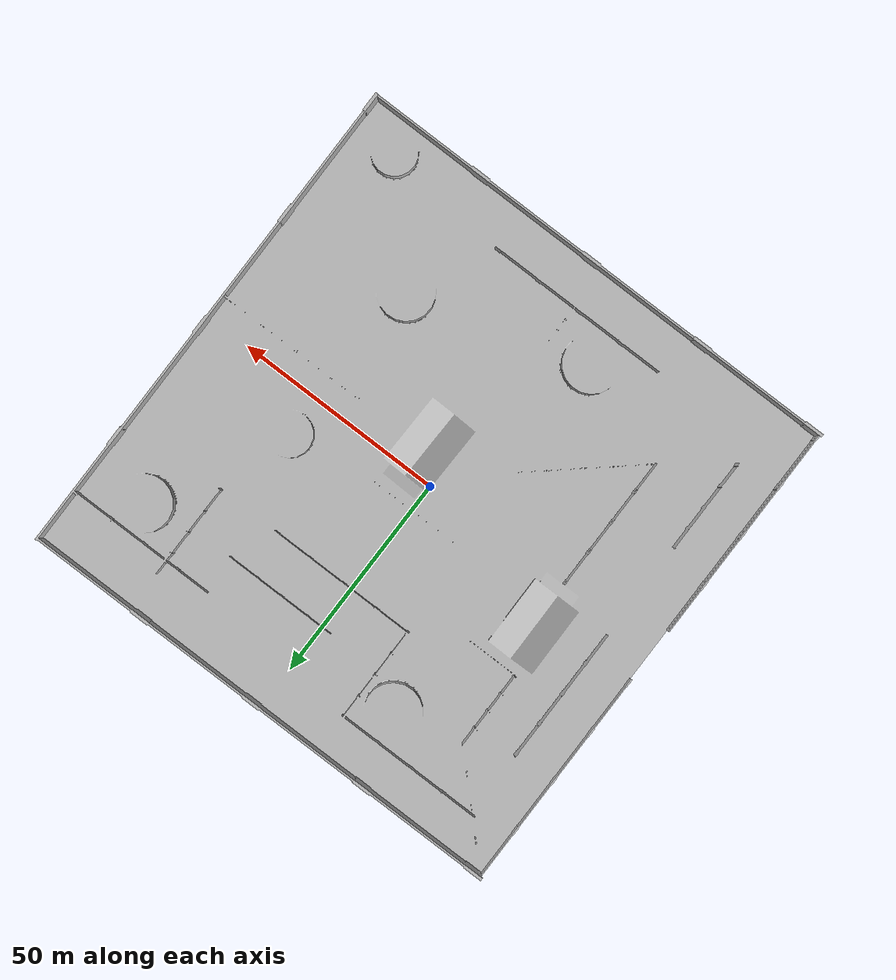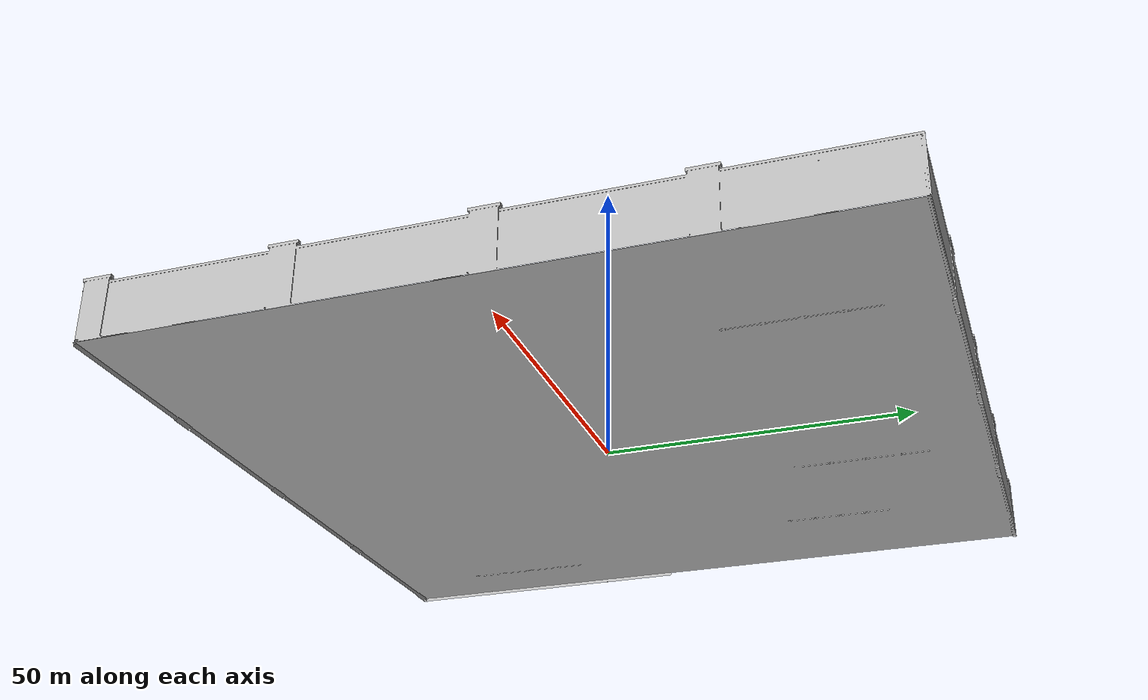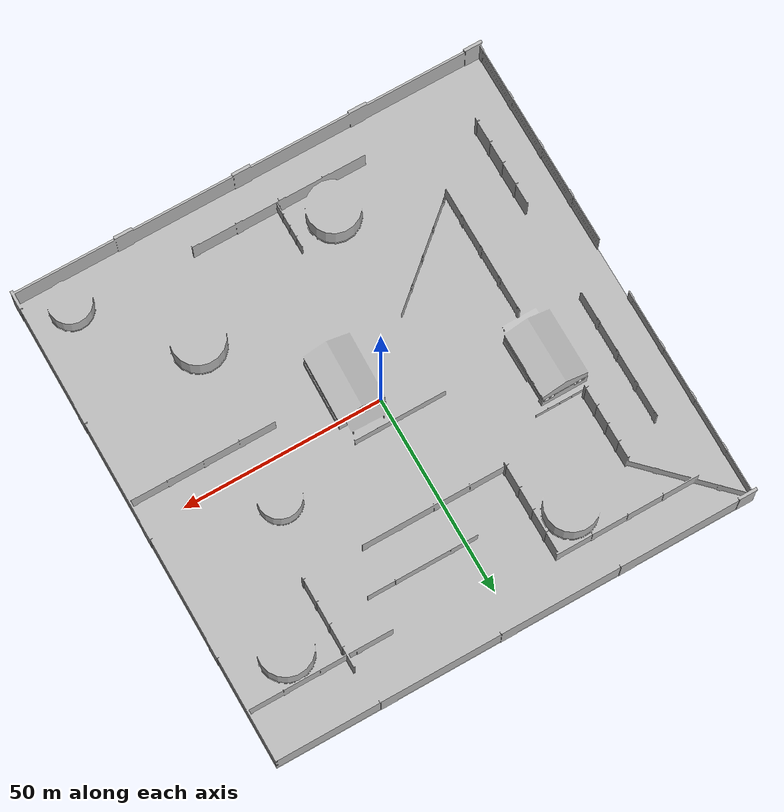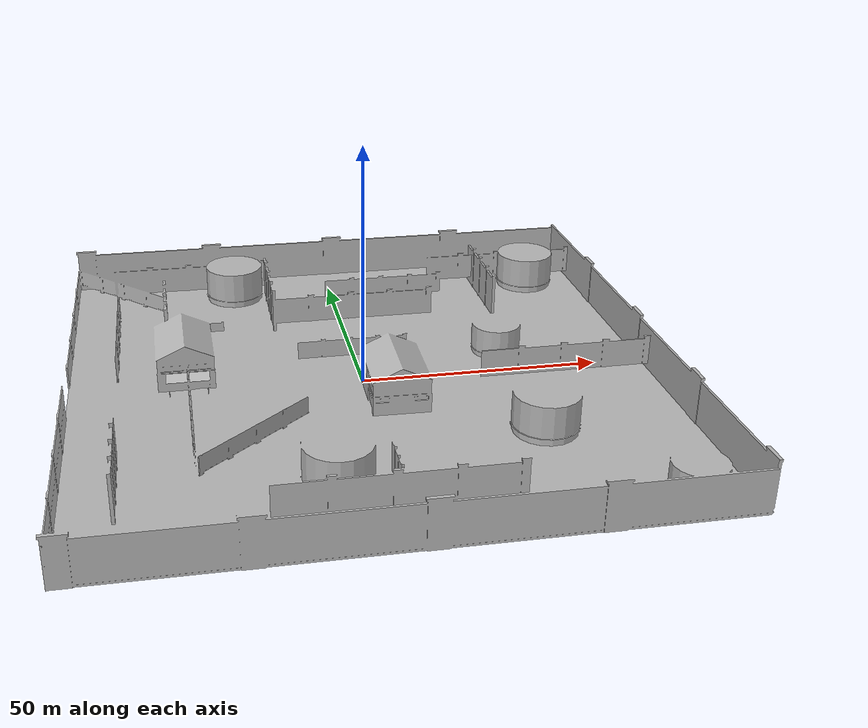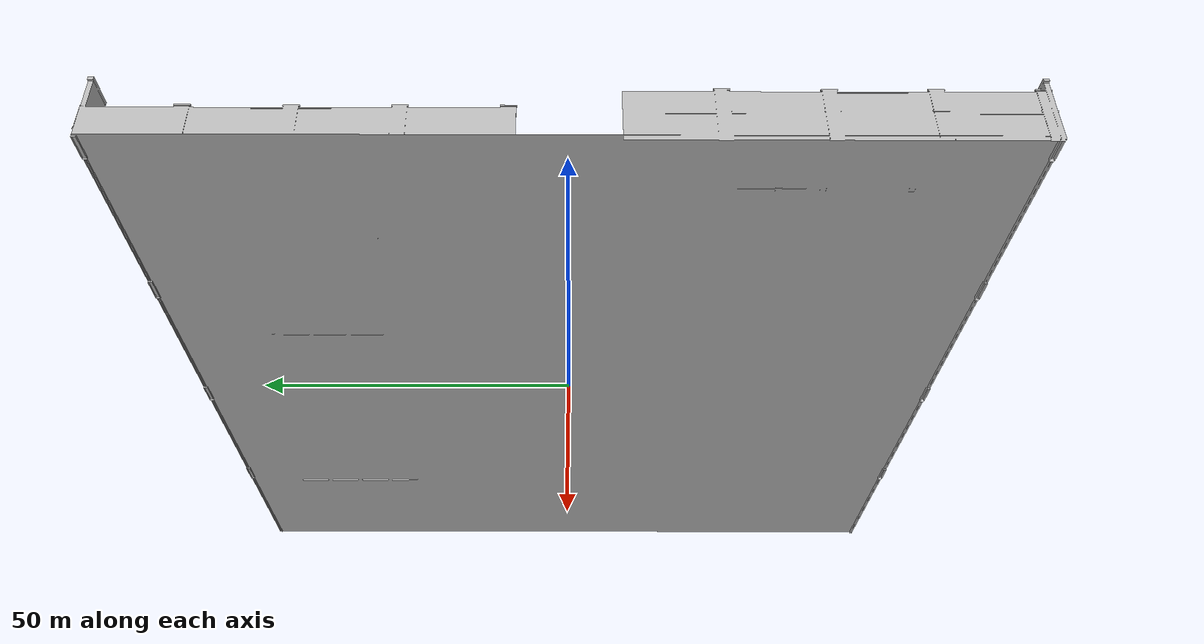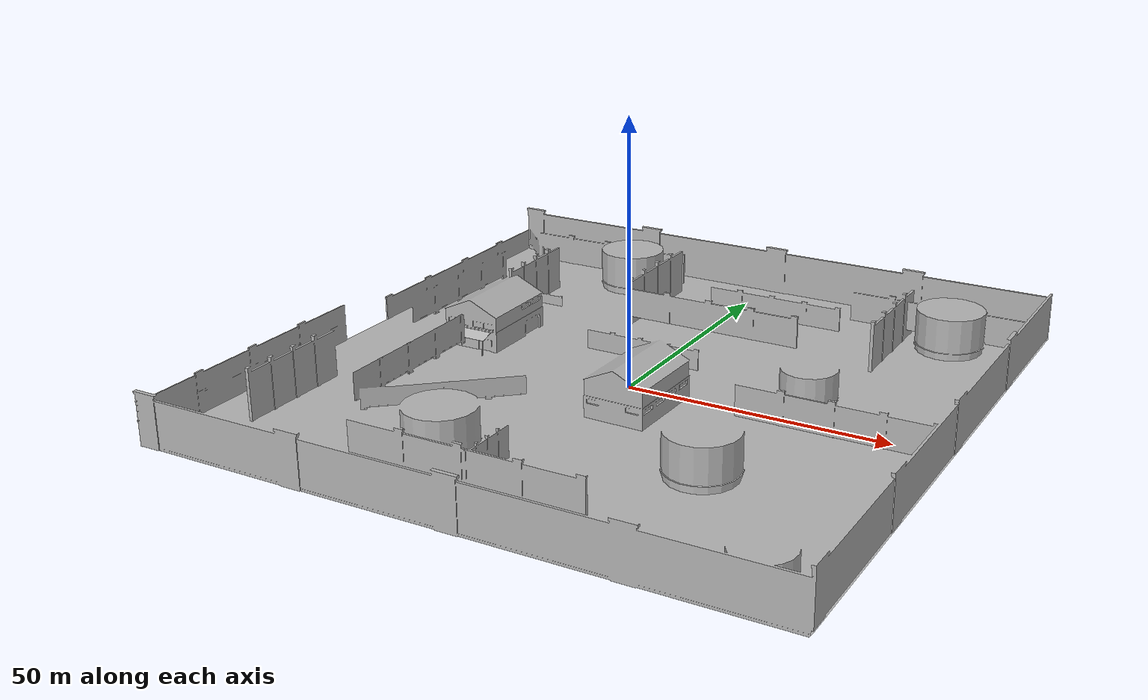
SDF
<?xml version="1.0" ?>
<sdf version="1.6">
  <model name="Room 10">
    <link name="link">
      <visual name="visual">
	    <geometry>
          <mesh>
            <uri>model://room10/meshes/room_10.dae</uri>
          </mesh>
        </geometry>
      </visual>
      <collision name="collision">
        <geometry>
          <mesh>
            <uri>model://room10/meshes/room_10.dae</uri>
          </mesh>
        </geometry>
      </collision>
</link>
  <static>1</static>
  </model>
</sdf>
